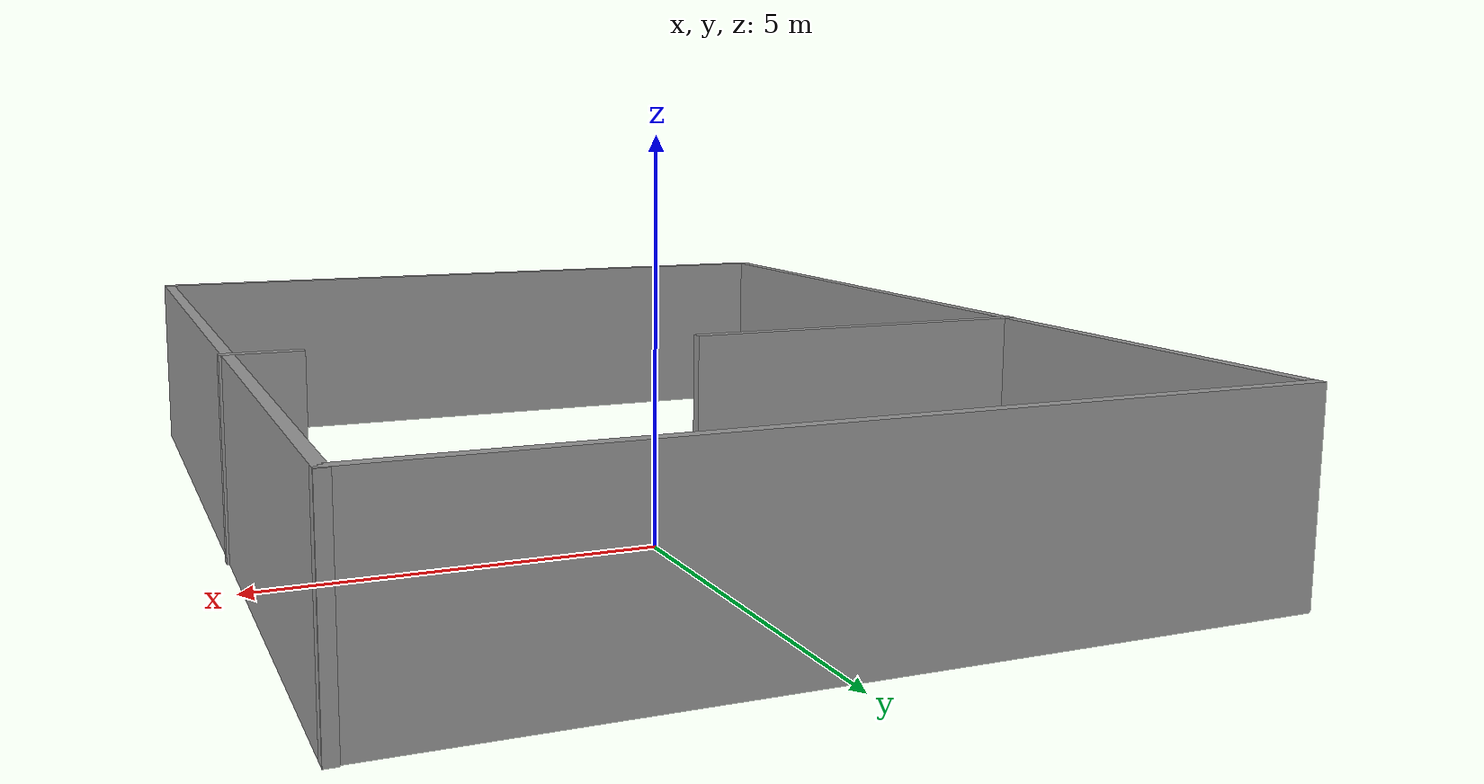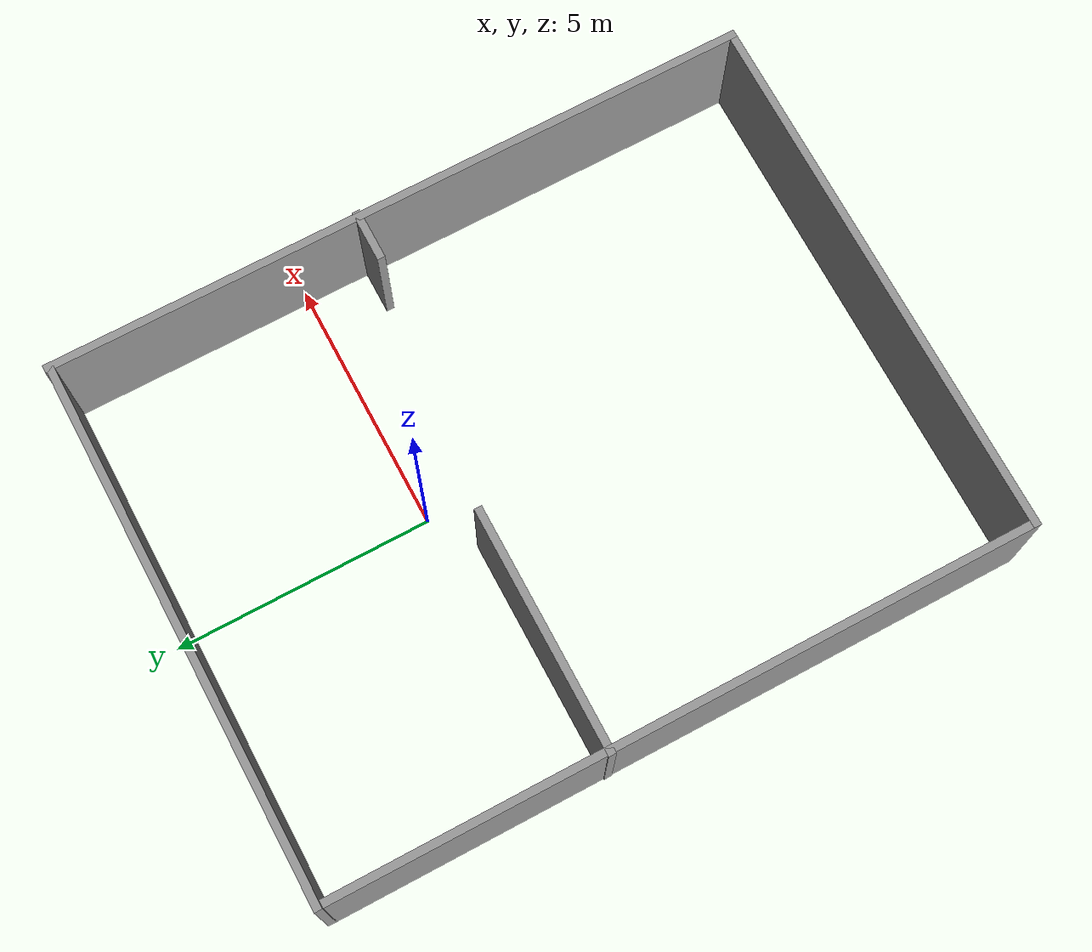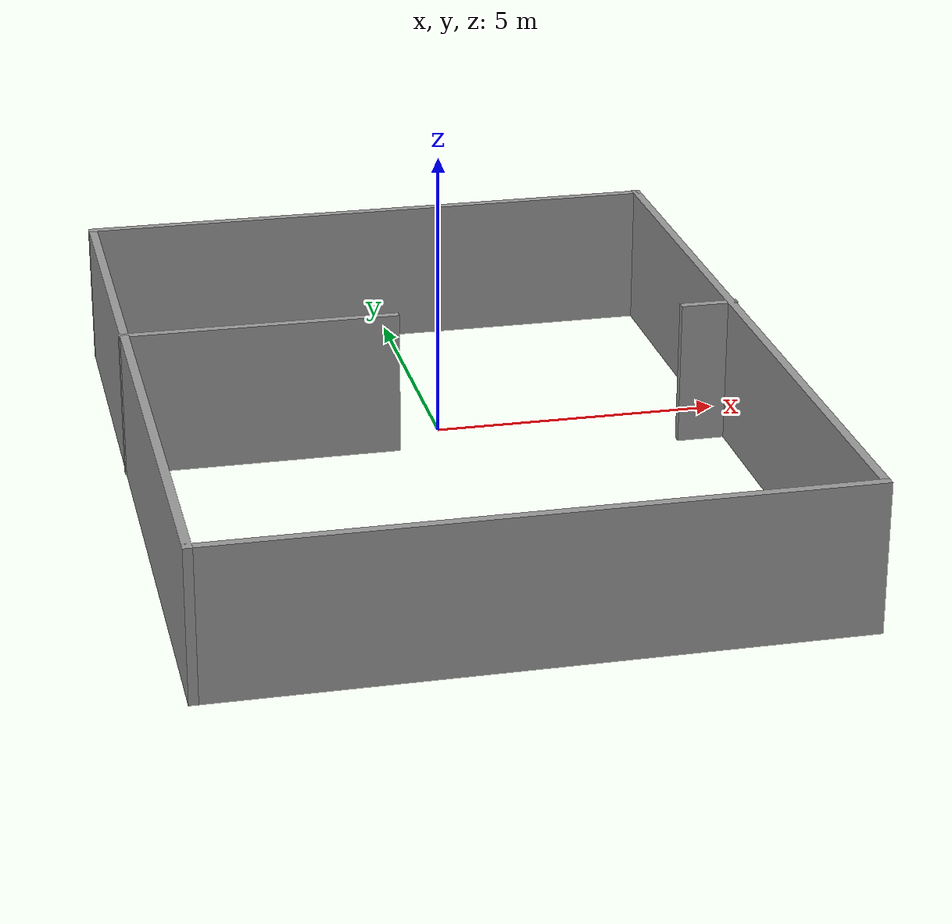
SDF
<?xml version='1.0'?>
<sdf version='1.6'>
  <model name='Model_S'>
    <pose frame=''>-0.300922 -2.04639 0 0 -0 0</pose>
    <link name='Wall_11'>
      <collision name='Wall_11_Collision'>
        <geometry>
          <box>
            <size>4.75 0.15 2.5</size>
          </box>
        </geometry>
        <pose frame=''>0 0 1.25 0 -0 0</pose>
      </collision>
      <visual name='Wall_11_Visual'>
        <pose frame=''>0 0 1.25 0 -0 0</pose>
        <geometry>
          <box>
            <size>4.75 0.15 2.5</size>
          </box>
        </geometry>
        <material>
          <script>
            <uri>file://media/materials/scripts/gazebo.material</uri>
            <name>Gazebo/Grey</name>
          </script>
          <ambient>1 1 1 1</ambient>
        </material>
        <meta>
          <layer>0</layer>
        </meta>
      </visual>
      <pose frame=''>-2.90034 1.39737 0 0 -0 0</pose>
    </link>
    <link name='Wall_13'>
      <collision name='Wall_13_Collision'>
        <geometry>
          <box>
            <size>1 0.15 2.5</size>
          </box>
        </geometry>
        <pose frame=''>0 0 1.25 0 -0 0</pose>
      </collision>
      <visual name='Wall_13_Visual'>
        <pose frame=''>0 0 1.25 0 -0 0</pose>
        <geometry>
          <box>
            <size>1 0.15 2.5</size>
          </box>
        </geometry>
        <material>
          <script>
            <uri>file://media/materials/scripts/gazebo.material</uri>
            <name>Gazebo/Grey</name>
          </script>
          <ambient>1 1 1 1</ambient>
        </material>
        <meta>
          <layer>0</layer>
        </meta>
      </visual>
      <pose frame=''>4.77534 0.785568 0 0 -0 3.14159</pose>
    </link>
    <link name='Wall_3'>
      <collision name='Wall_3_Collision'>
        <geometry>
          <box>
            <size>13.5 0.15 2.5</size>
          </box>
        </geometry>
        <pose frame=''>0 0 1.25 0 -0 0</pose>
      </collision>
      <visual name='Wall_3_Visual'>
        <pose frame=''>0 0 1.25 0 -0 0</pose>
        <geometry>
          <box>
            <size>13.5 0.15 2.5</size>
          </box>
        </geometry>
        <material>
          <script>
            <uri>file://media/materials/scripts/gazebo.material</uri>
            <name>Gazebo/Grey</name>
          </script>
          <ambient>1 1 1 1</ambient>
        </material>
        <meta>
          <layer>0</layer>
        </meta>
      </visual>
      <pose frame=''>-5.18211 -0.093101 0 0 0 -1.5708</pose>
    </link>
    <link name='Wall_4'>
      <collision name='Wall_4_Collision'>
        <geometry>
          <box>
            <size>10.5 0.15 2.5</size>
          </box>
        </geometry>
        <pose frame=''>0 0 1.25 0 -0 0</pose>
      </collision>
      <visual name='Wall_4_Visual'>
        <pose frame=''>0 0 1.25 0 -0 0</pose>
        <geometry>
          <box>
            <size>10.5 0.15 2.5</size>
          </box>
        </geometry>
        <material>
          <script>
            <uri>file://media/materials/scripts/gazebo.material</uri>
            <name>Gazebo/Grey</name>
          </script>
          <ambient>1 1 1 1</ambient>
        </material>
        <meta>
          <layer>0</layer>
        </meta>
      </visual>
      <pose frame=''>-0.007106 -6.7681 0 0 -0 0</pose>
    </link>
    <link name='Wall_5'>
      <collision name='Wall_5_Collision'>
        <geometry>
          <box>
            <size>13.6862 0.15 2.5</size>
          </box>
        </geometry>
        <pose frame=''>0 0 1.25 0 -0 0</pose>
      </collision>
      <visual name='Wall_5_Visual'>
        <pose frame=''>0 0 1.25 0 -0 0</pose>
        <geometry>
          <box>
            <size>13.6862 0.15 2.5</size>
          </box>
        </geometry>
        <material>
          <script>
            <uri>file://media/materials/scripts/gazebo.material</uri>
            <name>Gazebo/Grey</name>
          </script>
          <ambient>1 1 1 1</ambient>
        </material>
        <meta>
          <layer>0</layer>
        </meta>
      </visual>
      <pose frame=''>5.16789 0 0 0 -0 1.5708</pose>
    </link>
    <link name='Wall_6'>
      <collision name='Wall_6_Collision'>
        <geometry>
          <box>
            <size>10.5 0.15 2.5</size>
          </box>
        </geometry>
        <pose frame=''>0 0 1.25 0 -0 0</pose>
      </collision>
      <visual name='Wall_6_Visual'>
        <pose frame=''>0 0 1.25 0 -0 0</pose>
        <geometry>
          <box>
            <size>10.5 0.15 2.5</size>
          </box>
        </geometry>
        <material>
          <script>
            <uri>file://media/materials/scripts/gazebo.material</uri>
            <name>Gazebo/Grey</name>
          </script>
          <ambient>1 1 1 1</ambient>
        </material>
        <meta>
          <layer>0</layer>
        </meta>
      </visual>
      <pose frame=''>-0.007106 6.7415 0 0 -0 3.14159</pose>
    </link>
    <static>1</static>
  </model>
</sdf>
